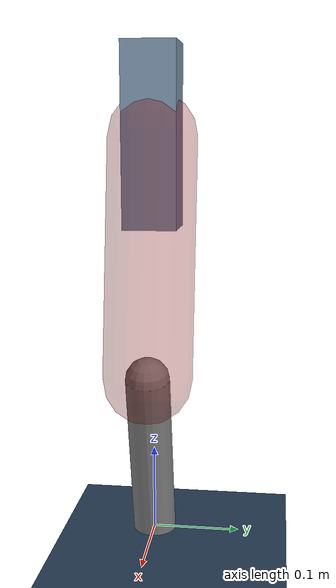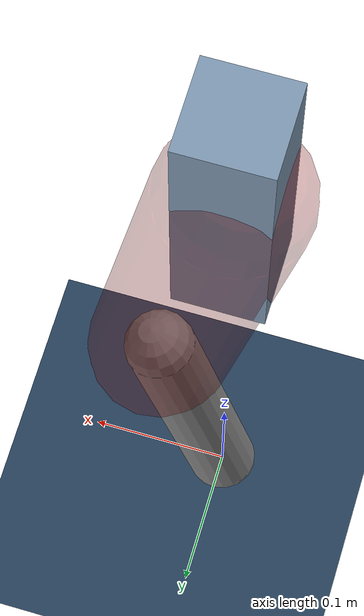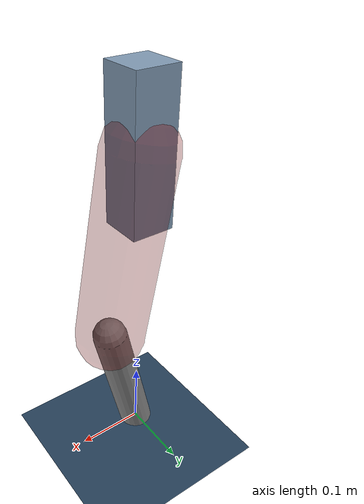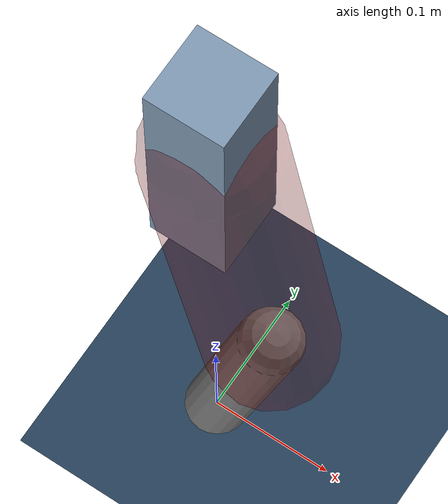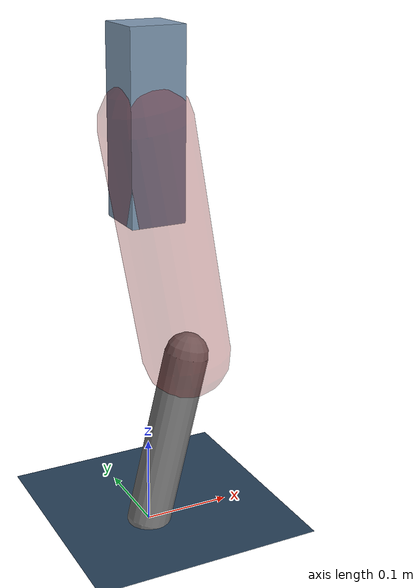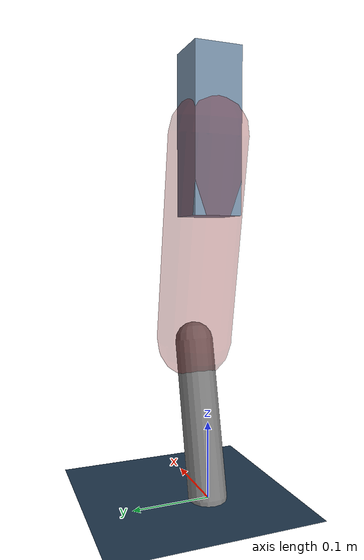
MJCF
<mujoco model="Hopper2D">
	<compiler inertiafromgeom="true" angle="radian" />
	<option timestep="0.001" integrator="implicit" cone="elliptic" solver="Newton" tolerance="1e-10" />

	<default>
		<geom contype="1" conaffinity="1" condim="3" friction="2 0.005 0.0001" solref="0.005 1" />
		<joint limited="true" damping="0.1" />
	</default>

	<asset>
		<texture name="skybox" type="skybox" builtin="gradient" rgb1=".4 .6 .8" rgb2="0 0 0" width="800" height="800" />
		<texture name="grid" type="2d" builtin="checker" rgb1=".1 .2 .3" rgb2=".2 .3 .4" width="300" height="300" mark="edge" markrgb=".2 .3 .4" />
		<material name="ground" texture="grid" texrepeat="1 1" texuniform="true" reflectance="0.1" />
		<material name="leg" rgba="0.5 0.6 0.7 1" />
	</asset>

	<worldbody>

		<geom name="floor" type="plane" size="5 5 0.25" material="ground" />

		<light directional="false" diffuse="0.8 0.8 0.8" specular="0.3 0.3 0.3" pos="0 0 2" dir="0 0 -1" />
		<light mode="targetbodycom" target="base" directional="false" diffuse="0.8 0.8 0.8" specular="0.3 0.3 0.3" pos="0 0 2" dir="0 0 -1" />

		<camera name="fixed" pos="0 -2 1" xyaxes="1 0 0 0 0 1" />
		<camera name="tracking" mode="trackcom" pos="0 -3 1" />

		<body name="root" pos="0 0 0.4620670841952291">
			<joint name="slide_x" type="slide" axis="1 0 0" range="-100 100" />
			<joint name="slide_z" type="slide" axis="0 0 1" range="0 10" />

			<body name="base" pos="0 0 0">
				<geom name="torso" type="box" size="0.03 0.03 0.1" mass="2.073" material="leg" />

				<body name="link1" pos="0 0 0" euler="0 1.3907440286325152 0">
					<joint type="hinge" axis="0 -1 0" pos="0 0 0" name="hinge1" limited="true" range="-3.14 3.14" stiffness="0" damping="0.1" />
					<geom name="thigh" type="capsule" fromto="0 0 0 0.2673595413085369 0 0" size="0.05" rgba="0.5 0 0 0.3" mass="0.9017348074021959" />

					<body name="link2" pos="0.2673595413085369 0 0" euler="0 0.41612891157485876 0">
						<joint type="hinge" axis="0 -1 0" pos="0 0 0" name="hinge2" limited="true" range="-3.14 3.14" stiffness="0" damping="0.1" />
						<geom name="shank" type="capsule" fromto="0 0 0 0.20470754288669227 0 0" size="0.025" mass="0.4048660343093538" />

					</body>
				</body>
			</body>
		</body>
	</worldbody>

	<actuator>
		<motor name="torque1" joint="hinge1" ctrlrange="-66.10671378828233 66.10671378828233" ctrllimited="true" gear="1" />
		<motor name="torque2" joint="hinge2" ctrlrange="-85.59360336874457 85.59360336874457" ctrllimited="true" gear="1" />
	</actuator>
</mujoco>
